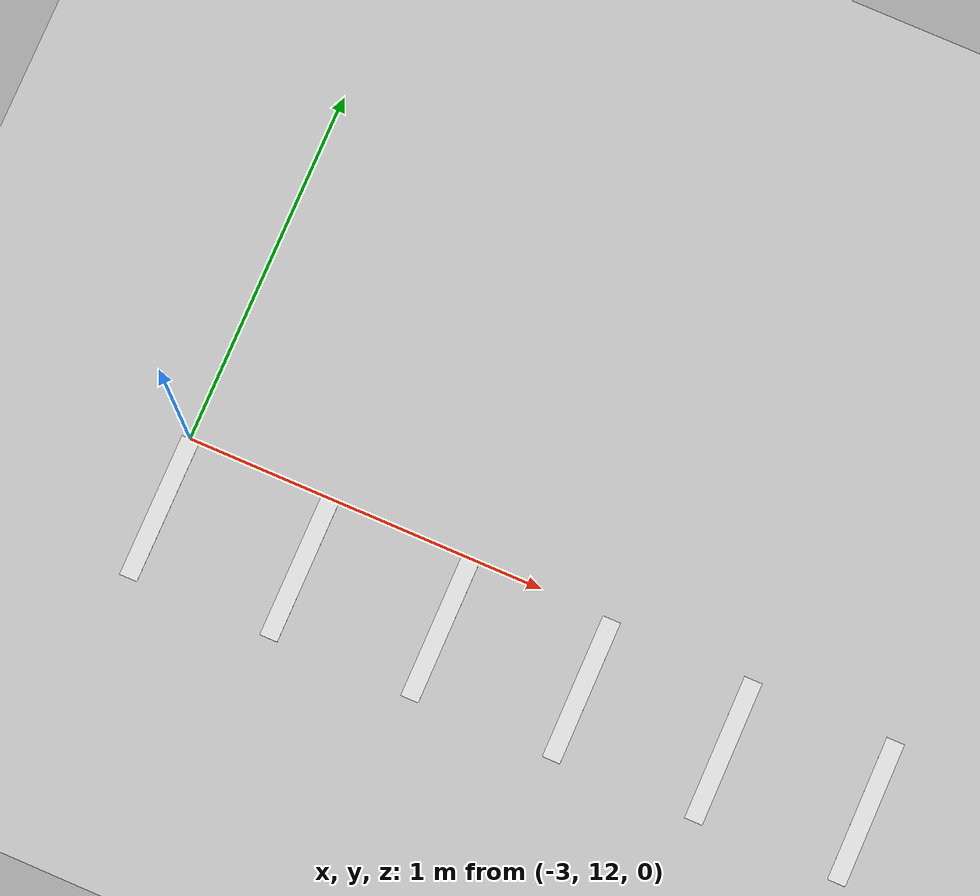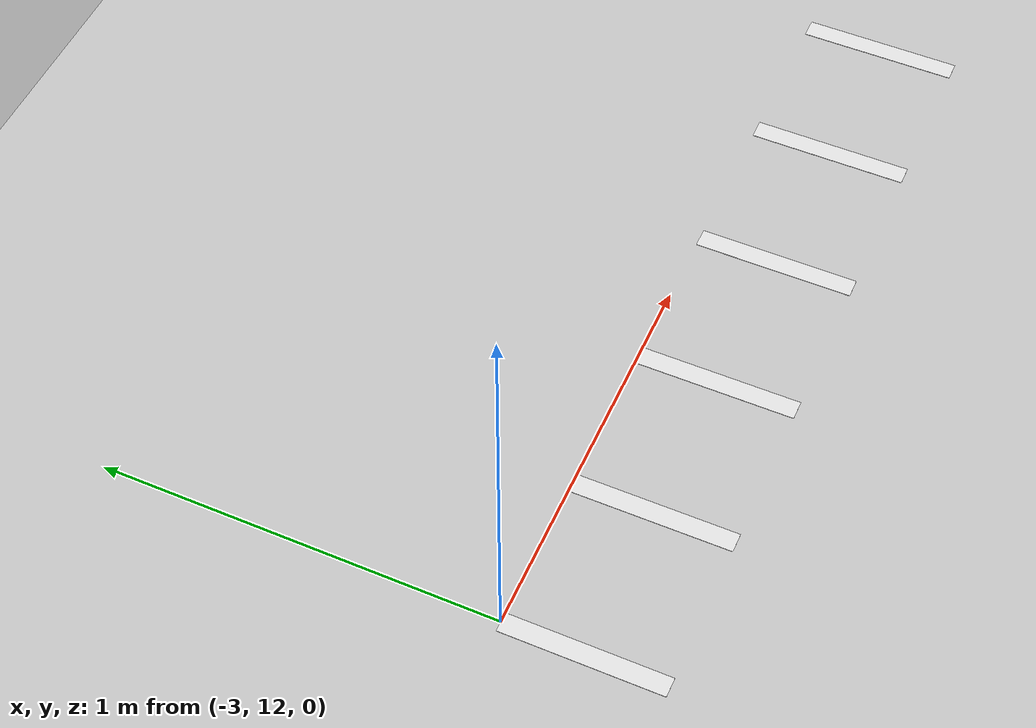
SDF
<sdf version="1.6">
 <world name="default">
  <model name="ground_plane">
   <static>1</static>
   <link name="link">
    <collision name="collision">
     <geometry><plane><normal>0 0 1</normal><size>100 100</size></plane></geometry>
     <surface><friction><ode><mu>100</mu><mu2>50</mu2></ode></friction></surface>
    </collision>
    <visual name="visual">
     <cast_shadows>0</cast_shadows>
     <geometry><plane><normal>0 0 1</normal><size>100 100</size></plane></geometry>
     <material>
      <script><uri>file://media/materials/scripts/gazebo.material</uri><name>Gazebo/Grey</name></script>
     </material>
    </visual>
   </link>
  </model>
  <model name="zebra_crossing_40cmx200cm_0">
   <link name="link_2">
    <inertial>
     <mass>1</mass>
     <inertia>
      <ixx>0.166667</ixx>
      <ixy>0</ixy>
      <ixz>0</ixz>
      <iyy>0.166667</iyy>
      <iyz>0</iyz>
      <izz>0.166667</izz>
     </inertia>
    </inertial>
    <visual name="ModelPreview_5::link_2::visual_1">
     <pose>-0.2 0 0 0 -0 0</pose>
     <geometry><box><size>0.05 0.4 0.001</size></box></geometry>
     <material>
      <lighting>1</lighting>
      <script><uri>file://media/materials/scripts/gazebo.material</uri><name>Gazebo/White</name></script>
     </material>
    </visual>
    <visual name="ModelPreview_5::link_2::visual_3">
     <pose>-0.6 0 0 0 -0 0</pose>
     <geometry><box><size>0.05 0.4 0.001</size></box></geometry>
     <material>
      <lighting>1</lighting>
      <script><uri>file://media/materials/scripts/gazebo.material</uri><name>Gazebo/White</name></script>
     </material>
    </visual>
    <visual name="ModelPreview_5::link_2::visual_4">
     <pose>1 0 0 0 -0 0</pose>
     <geometry><box><size>0.05 0.4 0.001</size></box></geometry>
     <material>
      <lighting>1</lighting>
      <script><uri>file://media/materials/scripts/gazebo.material</uri><name>Gazebo/White</name></script>
     </material>
    </visual>
    <visual name="visual">
     <pose>0.2 0 0 0 -0 0</pose>
     <geometry><box><size>0.05 0.4 0.001</size></box></geometry>
     <material>
      <lighting>1</lighting>
      <script><uri>file://media/materials/scripts/gazebo.material</uri><name>Gazebo/White</name></script>
     </material>
    </visual>
    <visual name="ModelPreview_5::link_2::visual_5">
     <pose>-1 0 0 0 -0 0</pose>
     <geometry><box><size>0.05 0.4 0.001</size></box></geometry>
     <material>
      <lighting>1</lighting>
      <script><uri>file://media/materials/scripts/gazebo.material</uri><name>Gazebo/White</name></script>
     </material>
    </visual>
    <visual name="ModelPreview_5::link_2::visual_2">
     <pose>0.6 0 0 0 -0 0</pose>
     <geometry><box><size>0.05 0.4 0.001</size></box></geometry>
     <material>
      <lighting>1</lighting>
      <script><uri>file://media/materials/scripts/gazebo.material</uri><name>Gazebo/White</name></script>
     </material>
    </visual>
    <collision name="collision_5">
     <pose>-1 0 0 0 -0 0</pose>
     <geometry><box><size>0.05 0.4 1e-05</size></box></geometry>
     <surface>
      <friction>
       <ode><mu>1</mu><mu2>1</mu2><fdir1>0 0 0</fdir1><slip1>0</slip1><slip2>0</slip2></ode>
       <torsional>
        <coefficient>1</coefficient>
        <patch_radius>0</patch_radius>
        <surface_radius>0</surface_radius>
        <use_patch_radius>1</use_patch_radius>
        <ode><slip>0</slip></ode>
       </torsional>
      </friction>
      <bounce><restitution_coefficient>0</restitution_coefficient><threshold>1e+06</threshold></bounce>
      <contact>
       <collide_without_contact>0</collide_without_contact>
       <collide_without_contact_bitmask>1</collide_without_contact_bitmask>
       <collide_bitmask>1</collide_bitmask>
       <ode>
        <soft_cfm>0</soft_cfm>
        <soft_erp>0.2</soft_erp>
        <kp>1e+13</kp>
        <kd>1</kd>
        <max_vel>0.01</max_vel>
        <min_depth>0</min_depth>
       </ode>
       <bullet>
        <split_impulse>1</split_impulse>
        <split_impulse_penetration_threshold>-0.01</split_impulse_penetration_threshold>
        <soft_cfm>0</soft_cfm>
        <soft_erp>0.2</soft_erp>
        <kp>1e+13</kp>
        <kd>1</kd>
       </bullet>
      </contact>
     </surface>
    </collision>
    <collision name="collision">
     <pose>0.2 0 0 0 -0 0</pose>
     <geometry><box><size>0.05 0.4 1e-05</size></box></geometry>
     <surface>
      <friction>
       <ode><mu>1</mu><mu2>1</mu2><fdir1>0 0 0</fdir1><slip1>0</slip1><slip2>0</slip2></ode>
       <torsional>
        <coefficient>1</coefficient>
        <patch_radius>0</patch_radius>
        <surface_radius>0</surface_radius>
        <use_patch_radius>1</use_patch_radius>
        <ode><slip>0</slip></ode>
       </torsional>
      </friction>
      <bounce><restitution_coefficient>0</restitution_coefficient><threshold>1e+06</threshold></bounce>
      <contact>
       <collide_without_contact>0</collide_without_contact>
       <collide_without_contact_bitmask>1</collide_without_contact_bitmask>
       <collide_bitmask>1</collide_bitmask>
       <ode>
        <soft_cfm>0</soft_cfm>
        <soft_erp>0.2</soft_erp>
        <kp>1e+13</kp>
        <kd>1</kd>
        <max_vel>0.01</max_vel>
        <min_depth>0</min_depth>
       </ode>
       <bullet>
        <split_impulse>1</split_impulse>
        <split_impulse_penetration_threshold>-0.01</split_impulse_penetration_threshold>
        <soft_cfm>0</soft_cfm>
        <soft_erp>0.2</soft_erp>
        <kp>1e+13</kp>
        <kd>1</kd>
       </bullet>
      </contact>
     </surface>
    </collision>
    <collision name="collision_3">
     <pose>-0.6 0 0 0 -0 0</pose>
     <geometry><box><size>0.05 0.4 1e-05</size></box></geometry>
     <surface>
      <friction>
       <ode><mu>1</mu><mu2>1</mu2><fdir1>0 0 0</fdir1><slip1>0</slip1><slip2>0</slip2></ode>
       <torsional>
        <coefficient>1</coefficient>
        <patch_radius>0</patch_radius>
        <surface_radius>0</surface_radius>
        <use_patch_radius>1</use_patch_radius>
        <ode><slip>0</slip></ode>
       </torsional>
      </friction>
      <bounce><restitution_coefficient>0</restitution_coefficient><threshold>1e+06</threshold></bounce>
      <contact>
       <collide_without_contact>0</collide_without_contact>
       <collide_without_contact_bitmask>1</collide_without_contact_bitmask>
       <collide_bitmask>1</collide_bitmask>
       <ode>
        <soft_cfm>0</soft_cfm>
        <soft_erp>0.2</soft_erp>
        <kp>1e+13</kp>
        <kd>1</kd>
        <max_vel>0.01</max_vel>
        <min_depth>0</min_depth>
       </ode>
       <bullet>
        <split_impulse>1</split_impulse>
        <split_impulse_penetration_threshold>-0.01</split_impulse_penetration_threshold>
        <soft_cfm>0</soft_cfm>
        <soft_erp>0.2</soft_erp>
        <kp>1e+13</kp>
        <kd>1</kd>
       </bullet>
      </contact>
     </surface>
    </collision>
    <collision name="collision_4">
     <pose>1 0 0 0 -0 0</pose>
     <geometry><box><size>0.05 0.4 1e-05</size></box></geometry>
     <surface>
      <friction>
       <ode><mu>1</mu><mu2>1</mu2><fdir1>0 0 0</fdir1><slip1>0</slip1><slip2>0</slip2></ode>
       <torsional>
        <coefficient>1</coefficient>
        <patch_radius>0</patch_radius>
        <surface_radius>0</surface_radius>
        <use_patch_radius>1</use_patch_radius>
        <ode><slip>0</slip></ode>
       </torsional>
      </friction>
      <bounce><restitution_coefficient>0</restitution_coefficient><threshold>1e+06</threshold></bounce>
      <contact>
       <collide_without_contact>0</collide_without_contact>
       <collide_without_contact_bitmask>1</collide_without_contact_bitmask>
       <collide_bitmask>1</collide_bitmask>
       <ode>
        <soft_cfm>0</soft_cfm>
        <soft_erp>0.2</soft_erp>
        <kp>1e+13</kp>
        <kd>1</kd>
        <max_vel>0.01</max_vel>
        <min_depth>0</min_depth>
       </ode>
       <bullet>
        <split_impulse>1</split_impulse>
        <split_impulse_penetration_threshold>-0.01</split_impulse_penetration_threshold>
        <soft_cfm>0</soft_cfm>
        <soft_erp>0.2</soft_erp>
        <kp>1e+13</kp>
        <kd>1</kd>
       </bullet>
      </contact>
     </surface>
    </collision>
    <collision name="collision_2">
     <pose>0.6 0 0 0 -0 0</pose>
     <geometry><box><size>0.05 0.4 1e-05</size></box></geometry>
     <surface>
      <friction>
       <ode><mu>1</mu><mu2>1</mu2><fdir1>0 0 0</fdir1><slip1>0</slip1><slip2>0</slip2></ode>
       <torsional>
        <coefficient>1</coefficient>
        <patch_radius>0</patch_radius>
        <surface_radius>0</surface_radius>
        <use_patch_radius>1</use_patch_radius>
        <ode><slip>0</slip></ode>
       </torsional>
      </friction>
      <bounce><restitution_coefficient>0</restitution_coefficient><threshold>1e+06</threshold></bounce>
      <contact>
       <collide_without_contact>0</collide_without_contact>
       <collide_without_contact_bitmask>1</collide_without_contact_bitmask>
       <collide_bitmask>1</collide_bitmask>
       <ode>
        <soft_cfm>0</soft_cfm>
        <soft_erp>0.2</soft_erp>
        <kp>1e+13</kp>
        <kd>1</kd>
        <max_vel>0.01</max_vel>
        <min_depth>0</min_depth>
       </ode>
       <bullet>
        <split_impulse>1</split_impulse>
        <split_impulse_penetration_threshold>-0.01</split_impulse_penetration_threshold>
        <soft_cfm>0</soft_cfm>
        <soft_erp>0.2</soft_erp>
        <kp>1e+13</kp>
        <kd>1</kd>
       </bullet>
      </contact>
     </surface>
    </collision>
    <collision name="collision_1">
     <pose>-0.2 0 0 0 -0 0</pose>
     <geometry><box><size>0.05 0.4 1e-05</size></box></geometry>
     <surface>
      <friction>
       <ode><mu>1</mu><mu2>1</mu2><fdir1>0 0 0</fdir1><slip1>0</slip1><slip2>0</slip2></ode>
       <torsional>
        <coefficient>1</coefficient>
        <patch_radius>0</patch_radius>
        <surface_radius>0</surface_radius>
        <use_patch_radius>1</use_patch_radius>
        <ode><slip>0</slip></ode>
       </torsional>
      </friction>
      <bounce><restitution_coefficient>0</restitution_coefficient><threshold>1e+06</threshold></bounce>
      <contact>
       <collide_without_contact>0</collide_without_contact>
       <collide_without_contact_bitmask>1</collide_without_contact_bitmask>
       <collide_bitmask>1</collide_bitmask>
       <ode>
        <soft_cfm>0</soft_cfm>
        <soft_erp>0.2</soft_erp>
        <kp>1e+13</kp>
        <kd>1</kd>
        <max_vel>0.01</max_vel>
        <min_depth>0</min_depth>
       </ode>
       <bullet>
        <split_impulse>1</split_impulse>
        <split_impulse_penetration_threshold>-0.01</split_impulse_penetration_threshold>
        <soft_cfm>0</soft_cfm>
        <soft_erp>0.2</soft_erp>
        <kp>1e+13</kp>
        <kd>1</kd>
       </bullet>
      </contact>
     </surface>
    </collision>
   </link>
   <static>1</static>
   <pose>-2 11.8 0 0 -0 0</pose>
  </model>
 </world>
</sdf>
